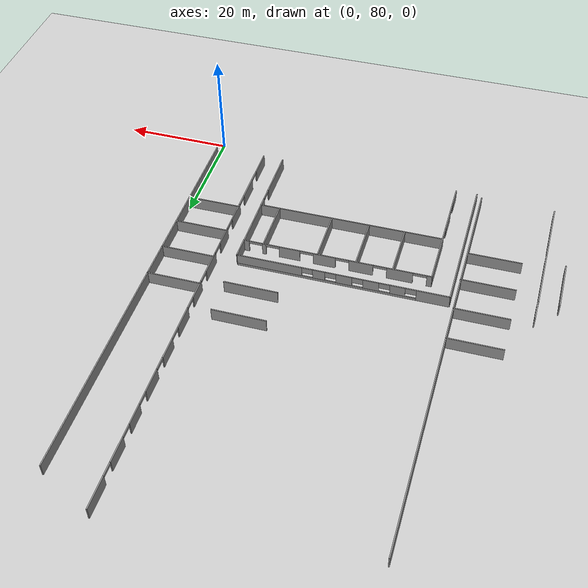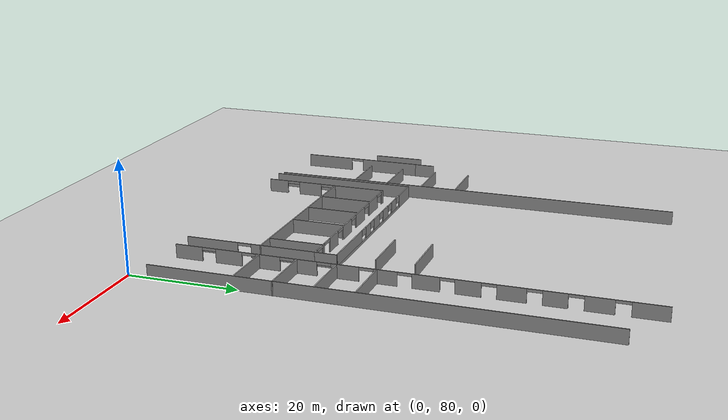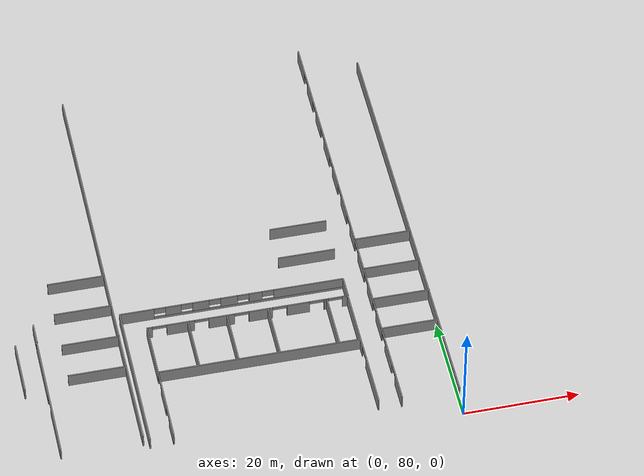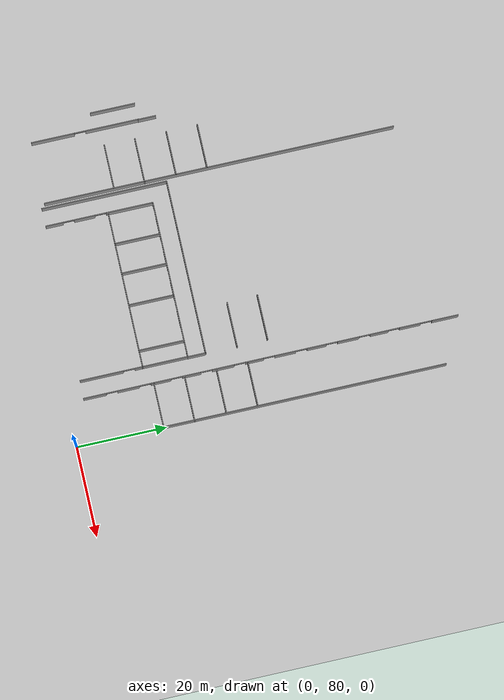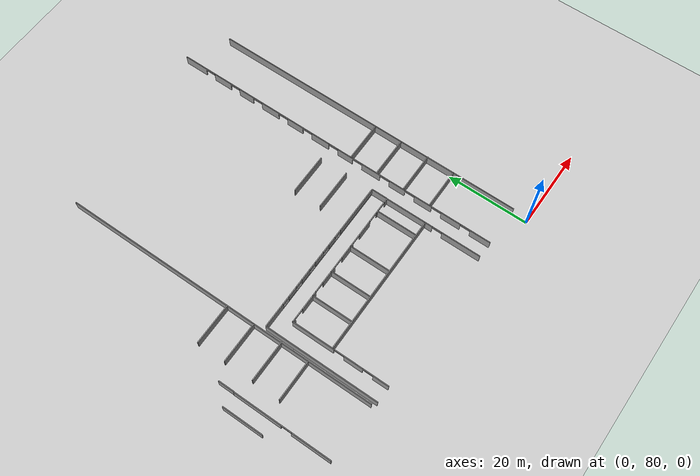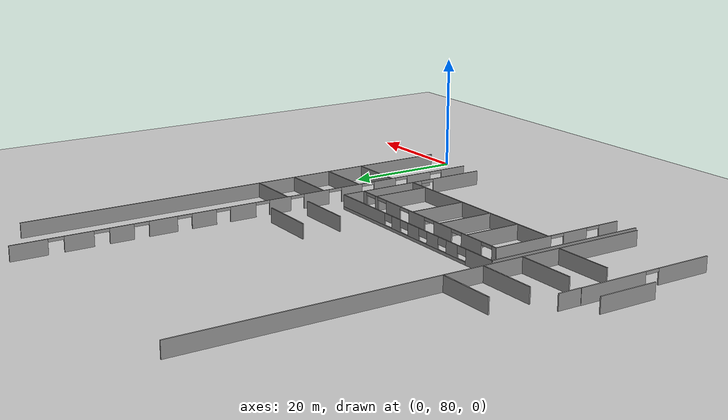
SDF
<sdf version="1.6">
 <world name="default">
  <model name="ground_plane">
   <static>1</static>
   <link name="link">
    <collision name="collision">
     <geometry><plane><normal>0 0 1</normal><size>100 100</size></plane></geometry>
     <surface><friction><ode><mu>100</mu><mu2>50</mu2></ode></friction></surface>
    </collision>
    <visual name="visual">
     <cast_shadows>0</cast_shadows>
     <geometry><plane><normal>0 0 1</normal><size>100 100</size></plane></geometry>
     <material>
      <script><uri>file://media/materials/scripts/gazebo.material</uri><name>Gazebo/Grey</name></script>
     </material>
    </visual>
   </link>
  </model>
  <model name="Jacaranda_v4_clone_0">
   <link name="Wall_100">
    <collision name="Wall_100_Collision">
     <geometry><box><size>10 0.2 2.5</size></box></geometry>
     <pose>0 0 1.25 0 -0 0</pose>
    </collision>
    <visual name="Wall_100_Visual">
     <pose>0 0 1.25 0 -0 0</pose>
     <geometry><box><size>10 0.2 2.5</size></box></geometry>
     <material>
      <script><uri>file://media/materials/scripts/gazebo.material</uri><name>Gazebo/Grey</name></script>
     </material>
    </visual>
    <velocity_decay><linear>0</linear><angular>0</angular></velocity_decay>
    <pose>-6.16092 -32.9106 0 0 0 -1.5708</pose>
   </link>
   <link name="Wall_102">
    <collision name="Wall_102_Collision">
     <geometry><box><size>10 0.2 2.5</size></box></geometry>
     <pose>0 0 1.25 0 -0 0</pose>
    </collision>
    <visual name="Wall_102_Visual">
     <pose>0 0 1.25 0 -0 0</pose>
     <geometry><box><size>10 0.2 2.5</size></box></geometry>
     <material>
      <script><uri>file://media/materials/scripts/gazebo.material</uri><name>Gazebo/Grey</name></script>
     </material>
    </visual>
    <velocity_decay><linear>0</linear><angular>0</angular></velocity_decay>
    <pose>-16.4411 -32.898 0 0 0 -1.5708</pose>
   </link>
   <link name="Wall_104">
    <collision name="Wall_104_Collision">
     <geometry><box><size>10 0.2 2.5</size></box></geometry>
     <pose>0 0 1.25 0 -0 0</pose>
    </collision>
    <visual name="Wall_104_Visual">
     <pose>0 0 1.25 0 -0 0</pose>
     <geometry><box><size>10 0.2 2.5</size></box></geometry>
     <material>
      <script><uri>file://media/materials/scripts/gazebo.material</uri><name>Gazebo/Grey</name></script>
     </material>
    </visual>
    <velocity_decay><linear>0</linear><angular>0</angular></velocity_decay>
    <pose>-23.6073 -32.9162 0 0 0 -1.5708</pose>
   </link>
   <link name="Wall_106">
    <collision name="Wall_106_Collision">
     <geometry><box><size>10 0.2 2.5</size></box></geometry>
     <pose>0 0 1.25 0 -0 0</pose>
    </collision>
    <visual name="Wall_106_Visual">
     <pose>0 0 1.25 0 -0 0</pose>
     <geometry><box><size>10 0.2 2.5</size></box></geometry>
     <material>
      <script><uri>file://media/materials/scripts/gazebo.material</uri><name>Gazebo/Grey</name></script>
     </material>
    </visual>
    <velocity_decay><linear>0</linear><angular>0</angular></velocity_decay>
    <pose>-30.3649 -32.9482 0 0 0 -1.5708</pose>
   </link>
   <link name="Wall_108">
    <pose>-37.4695 -39.9617 0 0 0 -1.5708</pose>
    <visual name="Wall_108_Visual_0">
     <pose>-6.76156 0 1.25 0 -0 0</pose>
     <geometry><box><size>10.4769 0.2 2.5</size></box></geometry>
     <material>
      <script><uri>file://media/materials/scripts/gazebo.material</uri><name>Gazebo/Grey</name></script>
     </material>
    </visual>
    <collision name="Wall_108_Collision_0">
     <geometry><box><size>10.4769 0.2 2.5</size></box></geometry>
     <pose>-6.76156 0 1.25 0 -0 0</pose>
    </collision>
    <visual name="Wall_108_Visual_1">
     <pose>3.29825 0 1.25 0 -0 0</pose>
     <geometry><box><size>4.64276 0.2 2.5</size></box></geometry>
     <material>
      <script><uri>file://media/materials/scripts/gazebo.material</uri><name>Gazebo/Grey</name></script>
     </material>
    </visual>
    <collision name="Wall_108_Collision_1">
     <geometry><box><size>4.64276 0.2 2.5</size></box></geometry>
     <pose>3.29825 0 1.25 0 -0 0</pose>
    </collision>
    <visual name="Wall_108_Visual_2">
     <pose>10.0598 0 1.25 0 -0 0</pose>
     <geometry><box><size>3.88036 0.2 2.5</size></box></geometry>
     <material>
      <script><uri>file://media/materials/scripts/gazebo.material</uri><name>Gazebo/Grey</name></script>
     </material>
    </visual>
    <collision name="Wall_108_Collision_2">
     <geometry><box><size>3.88036 0.2 2.5</size></box></geometry>
     <pose>10.0598 0 1.25 0 -0 0</pose>
    </collision>
    <visual name="Wall_108_Visual_3">
     <pose>-0.273129 0 2.25 0 -0 0</pose>
     <geometry><box><size>2.5 0.2 0.5</size></box></geometry>
     <material>
      <script><uri>file://media/materials/scripts/gazebo.material</uri><name>Gazebo/Grey</name></script>
     </material>
    </visual>
    <collision name="Wall_108_Collision_3">
     <geometry><box><size>2.5 0.2 0.5</size></box></geometry>
     <pose>-0.273129 0 2.25 0 -0 0</pose>
    </collision>
    <visual name="Wall_108_Visual_4">
     <pose>6.86964 0 2.25 0 -0 0</pose>
     <geometry><box><size>2.5 0.2 0.5</size></box></geometry>
     <material>
      <script><uri>file://media/materials/scripts/gazebo.material</uri><name>Gazebo/Grey</name></script>
     </material>
    </visual>
    <collision name="Wall_108_Collision_4">
     <geometry><box><size>2.5 0.2 0.5</size></box></geometry>
     <pose>6.86964 0 2.25 0 -0 0</pose>
    </collision>
   </link>
   <link name="Wall_114">
    <collision name="Wall_114_Collision">
     <geometry><box><size>28 0.2 2.5</size></box></geometry>
     <pose>0 0 1.25 0 -0 0</pose>
    </collision>
    <visual name="Wall_114_Visual">
     <pose>0 0 1.25 0 -0 0</pose>
     <geometry><box><size>28 0.2 2.5</size></box></geometry>
     <material>
      <script><uri>file://media/materials/scripts/gazebo.material</uri><name>Gazebo/Grey</name></script>
     </material>
    </visual>
    <velocity_decay><linear>0</linear><angular>0</angular></velocity_decay>
    <pose>-41.4842 -37.994 0 0 0 -1.5708</pose>
   </link>
   <link name="Wall_35">
    <pose>1.50679 -10.3195 0 0 0 -1.5708</pose>
    <visual name="Wall_35_Visual_0">
     <pose>-38.7718 0 1.25 0 -0 0</pose>
     <geometry><box><size>5.89333 0.2 2.5</size></box></geometry>
     <material>
      <script><uri>file://media/materials/scripts/gazebo.material</uri><name>Gazebo/Grey</name></script>
     </material>
    </visual>
    <collision name="Wall_35_Collision_0">
     <geometry><box><size>5.89333 0.2 2.5</size></box></geometry>
     <pose>-38.7718 0 1.25 0 -0 0</pose>
    </collision>
    <visual name="Wall_35_Visual_1">
     <pose>-30.9611 0 1.25 0 -0 0</pose>
     <geometry><box><size>4.72808 0.2 2.5</size></box></geometry>
     <material>
      <script><uri>file://media/materials/scripts/gazebo.material</uri><name>Gazebo/Grey</name></script>
     </material>
    </visual>
    <collision name="Wall_35_Collision_1">
     <geometry><box><size>4.72808 0.2 2.5</size></box></geometry>
     <pose>-30.9611 0 1.25 0 -0 0</pose>
    </collision>
    <visual name="Wall_35_Visual_2">
     <pose>-24.0927 0 1.25 0 -0 0</pose>
     <geometry><box><size>4.00867 0.2 2.5</size></box></geometry>
     <material>
      <script><uri>file://media/materials/scripts/gazebo.material</uri><name>Gazebo/Grey</name></script>
     </material>
    </visual>
    <collision name="Wall_35_Collision_2">
     <geometry><box><size>4.00867 0.2 2.5</size></box></geometry>
     <pose>-24.0927 0 1.25 0 -0 0</pose>
    </collision>
    <visual name="Wall_35_Visual_3">
     <pose>-17.1876 0 1.25 0 -0 0</pose>
     <geometry><box><size>4.80162 0.2 2.5</size></box></geometry>
     <material>
      <script><uri>file://media/materials/scripts/gazebo.material</uri><name>Gazebo/Grey</name></script>
     </material>
    </visual>
    <collision name="Wall_35_Collision_3">
     <geometry><box><size>4.80162 0.2 2.5</size></box></geometry>
     <pose>-17.1876 0 1.25 0 -0 0</pose>
    </collision>
    <visual name="Wall_35_Visual_4">
     <pose>-10.1336 0 1.25 0 -0 0</pose>
     <geometry><box><size>4.3064 0.2 2.5</size></box></geometry>
     <material>
      <script><uri>file://media/materials/scripts/gazebo.material</uri><name>Gazebo/Grey</name></script>
     </material>
    </visual>
    <collision name="Wall_35_Collision_4">
     <geometry><box><size>4.3064 0.2 2.5</size></box></geometry>
     <pose>-10.1336 0 1.25 0 -0 0</pose>
    </collision>
    <visual name="Wall_35_Visual_5">
     <pose>-3.14147 0 1.25 0 -0 0</pose>
     <geometry><box><size>4.67776 0.2 2.5</size></box></geometry>
     <material>
      <script><uri>file://media/materials/scripts/gazebo.material</uri><name>Gazebo/Grey</name></script>
     </material>
    </visual>
    <collision name="Wall_35_Collision_5">
     <geometry><box><size>4.67776 0.2 2.5</size></box></geometry>
     <pose>-3.14147 0 1.25 0 -0 0</pose>
    </collision>
    <visual name="Wall_35_Visual_6">
     <pose>3.7295 0 1.25 0 -0 0</pose>
     <geometry><box><size>4.06418 0.2 2.5</size></box></geometry>
     <material>
      <script><uri>file://media/materials/scripts/gazebo.material</uri><name>Gazebo/Grey</name></script>
     </material>
    </visual>
    <collision name="Wall_35_Collision_6">
     <geometry><box><size>4.06418 0.2 2.5</size></box></geometry>
     <pose>3.7295 0 1.25 0 -0 0</pose>
    </collision>
    <visual name="Wall_35_Visual_7">
     <pose>10.6976 0 1.25 0 -0 0</pose>
     <geometry><box><size>4.872 0.2 2.5</size></box></geometry>
     <material>
      <script><uri>file://media/materials/scripts/gazebo.material</uri><name>Gazebo/Grey</name></script>
     </material>
    </visual>
    <collision name="Wall_35_Collision_7">
     <geometry><box><size>4.872 0.2 2.5</size></box></geometry>
     <pose>10.6976 0 1.25 0 -0 0</pose>
    </collision>
    <visual name="Wall_35_Visual_8">
     <pose>17.7003 0 1.25 0 -0 0</pose>
     <geometry><box><size>4.13333 0.2 2.5</size></box></geometry>
     <material>
      <script><uri>file://media/materials/scripts/gazebo.material</uri><name>Gazebo/Grey</name></script>
     </material>
    </visual>
    <collision name="Wall_35_Collision_8">
     <geometry><box><size>4.13333 0.2 2.5</size></box></geometry>
     <pose>17.7003 0 1.25 0 -0 0</pose>
    </collision>
    <visual name="Wall_35_Visual_9">
     <pose>24.507 0 1.25 0 -0 0</pose>
     <geometry><box><size>4.48015 0.2 2.5</size></box></geometry>
     <material>
      <script><uri>file://media/materials/scripts/gazebo.material</uri><name>Gazebo/Grey</name></script>
     </material>
    </visual>
    <collision name="Wall_35_Collision_9">
     <geometry><box><size>4.48015 0.2 2.5</size></box></geometry>
     <pose>24.507 0 1.25 0 -0 0</pose>
    </collision>
    <visual name="Wall_35_Visual_10">
     <pose>31.7056 0 1.25 0 -0 0</pose>
     <geometry><box><size>4.91715 0.2 2.5</size></box></geometry>
     <material>
      <script><uri>file://media/materials/scripts/gazebo.material</uri><name>Gazebo/Grey</name></script>
     </material>
    </visual>
    <collision name="Wall_35_Collision_10">
     <geometry><box><size>4.91715 0.2 2.5</size></box></geometry>
     <pose>31.7056 0 1.25 0 -0 0</pose>
    </collision>
    <visual name="Wall_35_Visual_11">
     <pose>39.1913 0 1.25 0 -0 0</pose>
     <geometry><box><size>5.05424 0.2 2.5</size></box></geometry>
     <material>
      <script><uri>file://media/materials/scripts/gazebo.material</uri><name>Gazebo/Grey</name></script>
     </material>
    </visual>
    <collision name="Wall_35_Collision_11">
     <geometry><box><size>5.05424 0.2 2.5</size></box></geometry>
     <pose>39.1913 0 1.25 0 -0 0</pose>
    </collision>
    <visual name="Wall_35_Visual_12">
     <pose>-34.5751 0 2.25 0 -0 0</pose>
     <geometry><box><size>2.5 0.2 0.5</size></box></geometry>
     <material>
      <script><uri>file://media/materials/scripts/gazebo.material</uri><name>Gazebo/Grey</name></script>
     </material>
    </visual>
    <collision name="Wall_35_Collision_12">
     <geometry><box><size>2.5 0.2 0.5</size></box></geometry>
     <pose>-34.5751 0 2.25 0 -0 0</pose>
    </collision>
    <visual name="Wall_35_Visual_13">
     <pose>-27.347 0 2.25 0 -0 0</pose>
     <geometry><box><size>2.5 0.2 0.5</size></box></geometry>
     <material>
      <script><uri>file://media/materials/scripts/gazebo.material</uri><name>Gazebo/Grey</name></script>
     </material>
    </visual>
    <collision name="Wall_35_Collision_13">
     <geometry><box><size>2.5 0.2 0.5</size></box></geometry>
     <pose>-27.347 0 2.25 0 -0 0</pose>
    </collision>
    <visual name="Wall_35_Visual_14">
     <pose>-20.8384 0 2.25 0 -0 0</pose>
     <geometry><box><size>2.5 0.2 0.5</size></box></geometry>
     <material>
      <script><uri>file://media/materials/scripts/gazebo.material</uri><name>Gazebo/Grey</name></script>
     </material>
    </visual>
    <collision name="Wall_35_Collision_14">
     <geometry><box><size>2.5 0.2 0.5</size></box></geometry>
     <pose>-20.8384 0 2.25 0 -0 0</pose>
    </collision>
    <visual name="Wall_35_Visual_15">
     <pose>-13.5368 0 2.25 0 -0 0</pose>
     <geometry><box><size>2.5 0.2 0.5</size></box></geometry>
     <material>
      <script><uri>file://media/materials/scripts/gazebo.material</uri><name>Gazebo/Grey</name></script>
     </material>
    </visual>
    <collision name="Wall_35_Collision_15">
     <geometry><box><size>2.5 0.2 0.5</size></box></geometry>
     <pose>-13.5368 0 2.25 0 -0 0</pose>
    </collision>
    <visual name="Wall_35_Visual_16">
     <pose>-6.73035 0 2.25 0 -0 0</pose>
     <geometry><box><size>2.5 0.2 0.5</size></box></geometry>
     <material>
      <script><uri>file://media/materials/scripts/gazebo.material</uri><name>Gazebo/Grey</name></script>
     </material>
    </visual>
    <collision name="Wall_35_Collision_16">
     <geometry><box><size>2.5 0.2 0.5</size></box></geometry>
     <pose>-6.73035 0 2.25 0 -0 0</pose>
    </collision>
    <visual name="Wall_35_Visual_17">
     <pose>0.447409 0 2.25 0 -0 0</pose>
     <geometry><box><size>2.5 0.2 0.5</size></box></geometry>
     <material>
      <script><uri>file://media/materials/scripts/gazebo.material</uri><name>Gazebo/Grey</name></script>
     </material>
    </visual>
    <collision name="Wall_35_Collision_17">
     <geometry><box><size>2.5 0.2 0.5</size></box></geometry>
     <pose>0.447409 0 2.25 0 -0 0</pose>
    </collision>
    <visual name="Wall_35_Visual_18">
     <pose>7.01159 0 2.25 0 -0 0</pose>
     <geometry><box><size>2.5 0.2 0.5</size></box></geometry>
     <material>
      <script><uri>file://media/materials/scripts/gazebo.material</uri><name>Gazebo/Grey</name></script>
     </material>
    </visual>
    <collision name="Wall_35_Collision_18">
     <geometry><box><size>2.5 0.2 0.5</size></box></geometry>
     <pose>7.01159 0 2.25 0 -0 0</pose>
    </collision>
    <visual name="Wall_35_Visual_19">
     <pose>14.3836 0 2.25 0 -0 0</pose>
     <geometry><box><size>2.5 0.2 0.5</size></box></geometry>
     <material>
      <script><uri>file://media/materials/scripts/gazebo.material</uri><name>Gazebo/Grey</name></script>
     </material>
    </visual>
    <collision name="Wall_35_Collision_19">
     <geometry><box><size>2.5 0.2 0.5</size></box></geometry>
     <pose>14.3836 0 2.25 0 -0 0</pose>
    </collision>
    <visual name="Wall_35_Visual_20">
     <pose>21.0169 0 2.25 0 -0 0</pose>
     <geometry><box><size>2.5 0.2 0.5</size></box></geometry>
     <material>
      <script><uri>file://media/materials/scripts/gazebo.material</uri><name>Gazebo/Grey</name></script>
     </material>
    </visual>
    <collision name="Wall_35_Collision_20">
     <geometry><box><size>2.5 0.2 0.5</size></box></geometry>
     <pose>21.0169 0 2.25 0 -0 0</pose>
    </collision>
    <visual name="Wall_35_Visual_21">
     <pose>27.9971 0 2.25 0 -0 0</pose>
     <geometry><box><size>2.5 0.2 0.5</size></box></geometry>
     <material>
      <script><uri>file://media/materials/scripts/gazebo.material</uri><name>Gazebo/Grey</name></script>
     </material>
    </visual>
    <collision name="Wall_35_Collision_21">
     <geometry><box><size>2.5 0.2 0.5</size></box></geometry>
     <pose>27.9971 0 2.25 0 -0 0</pose>
    </collision>
    <visual name="Wall_35_Visual_22">
     <pose>35.4142 0 2.25 0 -0 0</pose>
     <geometry><box><size>2.5 0.2 0.5</size></box></geometry>
     <material>
      <script><uri>file://media/materials/scripts/gazebo.material</uri><name>Gazebo/Grey</name></script>
     </material>
    </visual>
    <collision name="Wall_35_Collision_22">
     <geometry><box><size>2.5 0.2 0.5</size></box></geometry>
     <pose>35.4142 0 2.25 0 -0 0</pose>
    </collision>
   </link>
   <link name="Wall_37">
    <pose>-2.48729 -39.9261 0 0 0 -1.5708</pose>
    <visual name="Wall_37_Visual_0">
     <pose>-6.07032 0 1.25 0 -0 0</pose>
     <geometry><box><size>11.8594 0.2 2.5</size></box></geometry>
     <material>
      <script><uri>file://media/materials/scripts/gazebo.material</uri><name>Gazebo/Grey</name></script>
     </material>
    </visual>
    <collision name="Wall_37_Collision_0">
     <geometry><box><size>11.8594 0.2 2.5</size></box></geometry>
     <pose>-6.07032 0 1.25 0 -0 0</pose>
    </collision>
    <visual name="Wall_37_Visual_1">
     <pose>7.17968 0 1.25 0 -0 0</pose>
     <geometry><box><size>9.64064 0.2 2.5</size></box></geometry>
     <material>
      <script><uri>file://media/materials/scripts/gazebo.material</uri><name>Gazebo/Grey</name></script>
     </material>
    </visual>
    <collision name="Wall_37_Collision_1">
     <geometry><box><size>9.64064 0.2 2.5</size></box></geometry>
     <pose>7.17968 0 1.25 0 -0 0</pose>
    </collision>
    <visual name="Wall_37_Visual_2">
     <pose>1.10936 0 2.25 0 -0 0</pose>
     <geometry><box><size>2.5 0.2 0.5</size></box></geometry>
     <material>
      <script><uri>file://media/materials/scripts/gazebo.material</uri><name>Gazebo/Grey</name></script>
     </material>
    </visual>
    <collision name="Wall_37_Collision_2">
     <geometry><box><size>2.5 0.2 0.5</size></box></geometry>
     <pose>1.10936 0 2.25 0 -0 0</pose>
    </collision>
   </link>
   <link name="Wall_61">
    <collision name="Wall_61_Collision">
     <geometry><box><size>10 0.2 2.5</size></box></geometry>
     <pose>0 0 1.25 0 -0 0</pose>
    </collision>
    <visual name="Wall_61_Visual">
     <pose>0 0 1.25 0 -0 0</pose>
     <geometry><box><size>10 0.2 2.5</size></box></geometry>
     <material>
      <script><uri>file://media/materials/scripts/gazebo.material</uri><name>Gazebo/Grey</name></script>
     </material>
    </visual>
    <velocity_decay><linear>0</linear><angular>0</angular></velocity_decay>
    <pose>-7.44869 -10.2258 0 0 -0 0</pose>
   </link>
   <link name="Wall_63">
    <collision name="Wall_63_Collision">
     <geometry><box><size>10 0.2 2.5</size></box></geometry>
     <pose>0 0 1.25 0 -0 0</pose>
    </collision>
    <visual name="Wall_63_Visual">
     <pose>0 0 1.25 0 -0 0</pose>
     <geometry><box><size>10 0.2 2.5</size></box></geometry>
     <material>
      <script><uri>file://media/materials/scripts/gazebo.material</uri><name>Gazebo/Grey</name></script>
     </material>
    </visual>
    <velocity_decay><linear>0</linear><angular>0</angular></velocity_decay>
    <pose>-7.36232 -17.0326 0 0 -0 0</pose>
   </link>
   <link name="Wall_65">
    <pose>-21.9808 -24.0075 0 0 -0 0</pose>
    <visual name="Wall_65_Visual_0">
     <pose>-16.5353 0 1.25 0 -0 0</pose>
     <geometry><box><size>5.92942 0.2 2.5</size></box></geometry>
     <material>
      <script><uri>file://media/materials/scripts/gazebo.material</uri><name>Gazebo/Grey</name></script>
     </material>
    </visual>
    <collision name="Wall_65_Collision_0">
     <geometry><box><size>5.92942 0.2 2.5</size></box></geometry>
     <pose>-16.5353 0 1.25 0 -0 0</pose>
    </collision>
    <visual name="Wall_65_Visual_1">
     <pose>2.96471 0 0.25 0 -0 0</pose>
     <geometry><box><size>33.0706 0.2 0.5</size></box></geometry>
     <material>
      <script><uri>file://media/materials/scripts/gazebo.material</uri><name>Gazebo/Grey</name></script>
     </material>
    </visual>
    <collision name="Wall_65_Collision_1">
     <geometry><box><size>33.0706 0.2 0.5</size></box></geometry>
     <pose>2.96471 0 0.25 0 -0 0</pose>
    </collision>
    <visual name="Wall_65_Visual_2">
     <pose>-10.2002 0 1.5 0 -0 0</pose>
     <geometry><box><size>2.74072 0.2 2</size></box></geometry>
     <material>
      <script><uri>file://media/materials/scripts/gazebo.material</uri><name>Gazebo/Grey</name></script>
     </material>
    </visual>
    <collision name="Wall_65_Collision_2">
     <geometry><box><size>2.74072 0.2 2</size></box></geometry>
     <pose>-10.2002 0 1.5 0 -0 0</pose>
    </collision>
    <visual name="Wall_65_Visual_3">
     <pose>-5.38873 0 1.5 0 -0 0</pose>
     <geometry><box><size>2.88224 0.2 2</size></box></geometry>
     <material>
      <script><uri>file://media/materials/scripts/gazebo.material</uri><name>Gazebo/Grey</name></script>
     </material>
    </visual>
    <collision name="Wall_65_Collision_3">
     <geometry><box><size>2.88224 0.2 2</size></box></geometry>
     <pose>-5.38873 0 1.5 0 -0 0</pose>
    </collision>
    <visual name="Wall_65_Visual_4">
     <pose>-0.471118 0 1.5 0 -0 0</pose>
     <geometry><box><size>2.95299 0.2 2</size></box></geometry>
     <material>
      <script><uri>file://media/materials/scripts/gazebo.material</uri><name>Gazebo/Grey</name></script>
     </material>
    </visual>
    <collision name="Wall_65_Collision_4">
     <geometry><box><size>2.95299 0.2 2</size></box></geometry>
     <pose>-0.471118 0 1.5 0 -0 0</pose>
    </collision>
    <visual name="Wall_65_Visual_5">
     <pose>4.16347 0 1.5 0 -0 0</pose>
     <geometry><box><size>2.31618 0.2 2</size></box></geometry>
     <material>
      <script><uri>file://media/materials/scripts/gazebo.material</uri><name>Gazebo/Grey</name></script>
     </material>
    </visual>
    <collision name="Wall_65_Collision_5">
     <geometry><box><size>2.31618 0.2 2</size></box></geometry>
     <pose>4.16347 0 1.5 0 -0 0</pose>
    </collision>
    <visual name="Wall_65_Visual_6">
     <pose>13.4108 0 1.5 0 -0 0</pose>
     <geometry><box><size>12.1784 0.2 2</size></box></geometry>
     <material>
      <script><uri>file://media/materials/scripts/gazebo.material</uri><name>Gazebo/Grey</name></script>
     </material>
    </visual>
    <collision name="Wall_65_Collision_6">
     <geometry><box><size>12.1784 0.2 2</size></box></geometry>
     <pose>13.4108 0 1.5 0 -0 0</pose>
    </collision>
    <visual name="Wall_65_Visual_7">
     <pose>-12.5706 0 1.9 0 -0 0</pose>
     <geometry><box><size>2 0.2 1.2</size></box></geometry>
     <material>
      <script><uri>file://media/materials/scripts/gazebo.material</uri><name>Gazebo/Grey</name></script>
     </material>
    </visual>
    <collision name="Wall_65_Collision_7">
     <geometry><box><size>2 0.2 1.2</size></box></geometry>
     <pose>-12.5706 0 1.9 0 -0 0</pose>
    </collision>
    <visual name="Wall_65_Visual_8">
     <pose>-7.82985 0 1.9 0 -0 0</pose>
     <geometry><box><size>2 0.2 1.2</size></box></geometry>
     <material>
      <script><uri>file://media/materials/scripts/gazebo.material</uri><name>Gazebo/Grey</name></script>
     </material>
    </visual>
    <collision name="Wall_65_Collision_8">
     <geometry><box><size>2 0.2 1.2</size></box></geometry>
     <pose>-7.82985 0 1.9 0 -0 0</pose>
    </collision>
    <visual name="Wall_65_Visual_9">
     <pose>-2.94761 0 1.9 0 -0 0</pose>
     <geometry><box><size>2 0.2 1.2</size></box></geometry>
     <material>
      <script><uri>file://media/materials/scripts/gazebo.material</uri><name>Gazebo/Grey</name></script>
     </material>
    </visual>
    <collision name="Wall_65_Collision_9">
     <geometry><box><size>2 0.2 1.2</size></box></geometry>
     <pose>-2.94761 0 1.9 0 -0 0</pose>
    </collision>
    <visual name="Wall_65_Visual_10">
     <pose>2.00538 0 1.9 0 -0 0</pose>
     <geometry><box><size>2 0.2 1.2</size></box></geometry>
     <material>
      <script><uri>file://media/materials/scripts/gazebo.material</uri><name>Gazebo/Grey</name></script>
     </material>
    </visual>
    <collision name="Wall_65_Collision_10">
     <geometry><box><size>2 0.2 1.2</size></box></geometry>
     <pose>2.00538 0 1.9 0 -0 0</pose>
    </collision>
    <visual name="Wall_65_Visual_11">
     <pose>6.32156 0 1.9 0 -0 0</pose>
     <geometry><box><size>2 0.2 1.2</size></box></geometry>
     <material>
      <script><uri>file://media/materials/scripts/gazebo.material</uri><name>Gazebo/Grey</name></script>
     </material>
    </visual>
    <collision name="Wall_65_Collision_11">
     <geometry><box><size>2 0.2 1.2</size></box></geometry>
     <pose>6.32156 0 1.9 0 -0 0</pose>
    </collision>
   </link>
   <link name="Wall_69">
    <collision name="Wall_69_Collision">
     <geometry><box><size>78.4462 0.2 2.5</size></box></geometry>
     <pose>0 0 1.25 0 -0 0</pose>
    </collision>
    <visual name="Wall_69_Visual">
     <pose>0 0 1.25 0 -0 0</pose>
     <geometry><box><size>78.4462 0.2 2.5</size></box></geometry>
     <material>
      <script><uri>file://media/materials/scripts/gazebo.material</uri><name>Gazebo/Grey</name></script>
     </material>
    </visual>
    <velocity_decay><linear>0</linear><angular>0</angular></velocity_decay>
    <pose>11.3874 -12.8156 0 0 0 -1.5708</pose>
   </link>
   <link name="Wall_81">
    <collision name="Wall_81_Collision">
     <geometry><box><size>10 0.2 2.5</size></box></geometry>
     <pose>0 0 1.25 0 -0 0</pose>
    </collision>
    <visual name="Wall_81_Visual">
     <pose>0 0 1.25 0 -0 0</pose>
     <geometry><box><size>10 0.2 2.5</size></box></geometry>
     <material>
      <script><uri>file://media/materials/scripts/gazebo.material</uri><name>Gazebo/Grey</name></script>
     </material>
    </visual>
    <velocity_decay><linear>0</linear><angular>0</angular></velocity_decay>
    <pose>6.4754 -15.532 0 0 -0 0</pose>
   </link>
   <link name="Wall_83">
    <collision name="Wall_83_Collision">
     <geometry><box><size>10 0.2 2.5</size></box></geometry>
     <pose>0 0 1.25 0 -0 0</pose>
    </collision>
    <visual name="Wall_83_Visual">
     <pose>0 0 1.25 0 -0 0</pose>
     <geometry><box><size>10 0.2 2.5</size></box></geometry>
     <material>
      <script><uri>file://media/materials/scripts/gazebo.material</uri><name>Gazebo/Grey</name></script>
     </material>
    </visual>
    <velocity_decay><linear>0</linear><angular>0</angular></velocity_decay>
    <pose>6.44384 -22.4952 0 0 -0 0</pose>
   </link>
   <link name="Wall_85">
    <collision name="Wall_85_Collision">
     <geometry><box><size>10 0.2 2.5</size></box></geometry>
     <pose>0 0 1.25 0 -0 0</pose>
    </collision>
    <visual name="Wall_85_Visual">
     <pose>0 0 1.25 0 -0 0</pose>
     <geometry><box><size>10 0.2 2.5</size></box></geometry>
     <material>
      <script><uri>file://media/materials/scripts/gazebo.material</uri><name>Gazebo/Grey</name></script>
     </material>
    </visual>
    <velocity_decay><linear>0</linear><angular>0</angular></velocity_decay>
    <pose>6.53559 -29.5696 0 0 -0 0</pose>
   </link>
   <link name="Wall_89">
    <pose>-20.0123 -27.9879 0 0 -0 3.14159</pose>
    <visual name="Wall_89_Visual_0">
     <pose>-17.0213 0 1.25 0 -0 0</pose>
     <geometry><box><size>0.957415 0.2 2.5</size></box></geometry>
     <material>
      <script><uri>file://media/materials/scripts/gazebo.material</uri><name>Gazebo/Grey</name></script>
     </material>
    </visual>
    <collision name="Wall_89_Collision_0">
     <geometry><box><size>0.957415 0.2 2.5</size></box></geometry>
     <pose>-17.0213 0 1.25 0 -0 0</pose>
    </collision>
    <visual name="Wall_89_Visual_1">
     <pose>-13.6838 0 1.25 0 -0 0</pose>
     <geometry><box><size>0.717618 0.2 2.5</size></box></geometry>
     <material>
      <script><uri>file://media/materials/scripts/gazebo.material</uri><name>Gazebo/Grey</name></script>
     </material>
    </visual>
    <collision name="Wall_89_Collision_1">
     <geometry><box><size>0.717618 0.2 2.5</size></box></geometry>
     <pose>-13.6838 0 1.25 0 -0 0</pose>
    </collision>
    <visual name="Wall_89_Visual_2">
     <pose>-8.84673 0 1.25 0 -0 0</pose>
     <geometry><box><size>3.95648 0.2 2.5</size></box></geometry>
     <material>
      <script><uri>file://media/materials/scripts/gazebo.material</uri><name>Gazebo/Grey</name></script>
     </material>
    </visual>
    <collision name="Wall_89_Collision_2">
     <geometry><box><size>3.95648 0.2 2.5</size></box></geometry>
     <pose>-8.84673 0 1.25 0 -0 0</pose>
    </collision>
    <visual name="Wall_89_Visual_3">
     <pose>-2.29074 0 1.25 0 -0 0</pose>
     <geometry><box><size>4.15549 0.2 2.5</size></box></geometry>
     <material>
      <script><uri>file://media/materials/scripts/gazebo.material</uri><name>Gazebo/Grey</name></script>
     </material>
    </visual>
    <collision name="Wall_89_Collision_3">
     <geometry><box><size>4.15549 0.2 2.5</size></box></geometry>
     <pose>-2.29074 0 1.25 0 -0 0</pose>
    </collision>
    <visual name="Wall_89_Visual_4">
     <pose>4.53043 0 1.25 0 -0 0</pose>
     <geometry><box><size>4.48686 0.2 2.5</size></box></geometry>
     <material>
      <script><uri>file://media/materials/scripts/gazebo.material</uri><name>Gazebo/Grey</name></script>
     </material>
    </visual>
    <collision name="Wall_89_Collision_4">
     <geometry><box><size>4.48686 0.2 2.5</size></box></geometry>
     <pose>4.53043 0 1.25 0 -0 0</pose>
    </collision>
    <visual name="Wall_89_Visual_5">
     <pose>11.6732 0 1.25 0 -0 0</pose>
     <geometry><box><size>4.79864 0.2 2.5</size></box></geometry>
     <material>
      <script><uri>file://media/materials/scripts/gazebo.material</uri><name>Gazebo/Grey</name></script>
     </material>
    </visual>
    <collision name="Wall_89_Collision_5">
     <geometry><box><size>4.79864 0.2 2.5</size></box></geometry>
     <pose>11.6732 0 1.25 0 -0 0</pose>
    </collision>
    <visual name="Wall_89_Visual_6">
     <pose>17.0363 0 1.25 0 -0 0</pose>
     <geometry><box><size>0.927498 0.2 2.5</size></box></geometry>
     <material>
      <script><uri>file://media/materials/scripts/gazebo.material</uri><name>Gazebo/Grey</name></script>
     </material>
    </visual>
    <collision name="Wall_89_Collision_6">
     <geometry><box><size>0.927498 0.2 2.5</size></box></geometry>
     <pose>17.0363 0 1.25 0 -0 0</pose>
    </collision>
    <visual name="Wall_89_Visual_7">
     <pose>-15.2926 0 2.25 0 -0 0</pose>
     <geometry><box><size>2.5 0.2 0.5</size></box></geometry>
     <material>
      <script><uri>file://media/materials/scripts/gazebo.material</uri><name>Gazebo/Grey</name></script>
     </material>
    </visual>
    <collision name="Wall_89_Collision_7">
     <geometry><box><size>2.5 0.2 0.5</size></box></geometry>
     <pose>-15.2926 0 2.25 0 -0 0</pose>
    </collision>
    <visual name="Wall_89_Visual_8">
     <pose>-12.075 0 2.25 0 -0 0</pose>
     <geometry><box><size>2.5 0.2 0.5</size></box></geometry>
     <material>
      <script><uri>file://media/materials/scripts/gazebo.material</uri><name>Gazebo/Grey</name></script>
     </material>
    </visual>
    <collision name="Wall_89_Collision_8">
     <geometry><box><size>2.5 0.2 0.5</size></box></geometry>
     <pose>-12.075 0 2.25 0 -0 0</pose>
    </collision>
    <visual name="Wall_89_Visual_9">
     <pose>-5.61848 0 2.25 0 -0 0</pose>
     <geometry><box><size>2.5 0.2 0.5</size></box></geometry>
     <material>
      <script><uri>file://media/materials/scripts/gazebo.material</uri><name>Gazebo/Grey</name></script>
     </material>
    </visual>
    <collision name="Wall_89_Collision_9">
     <geometry><box><size>2.5 0.2 0.5</size></box></geometry>
     <pose>-5.61848 0 2.25 0 -0 0</pose>
    </collision>
    <visual name="Wall_89_Visual_10">
     <pose>1.037 0 2.25 0 -0 0</pose>
     <geometry><box><size>2.5 0.2 0.5</size></box></geometry>
     <material>
      <script><uri>file://media/materials/scripts/gazebo.material</uri><name>Gazebo/Grey</name></script>
     </material>
    </visual>
    <collision name="Wall_89_Collision_10">
     <geometry><box><size>2.5 0.2 0.5</size></box></geometry>
     <pose>1.037 0 2.25 0 -0 0</pose>
    </collision>
    <visual name="Wall_89_Visual_11">
     <pose>8.02387 0 2.25 0 -0 0</pose>
     <geometry><box><size>2.5 0.2 0.5</size></box></geometry>
     <material>
      <script><uri>file://media/materials/scripts/gazebo.material</uri><name>Gazebo/Grey</name></script>
     </material>
    </visual>
    <collision name="Wall_89_Collision_11">
     <geometry><box><size>2.5 0.2 0.5</size></box></geometry>
     <pose>8.02387 0 2.25 0 -0 0</pose>
    </collision>
    <visual name="Wall_89_Visual_12">
     <pose>15.3225 0 2.25 0 -0 0</pose>
     <geometry><box><size>2.5 0.2 0.5</size></box></geometry>
     <material>
      <script><uri>file://media/materials/scripts/gazebo.material</uri><name>Gazebo/Grey</name></script>
     </material>
    </visual>
    <collision name="Wall_89_Collision_12">
     <geometry><box><size>2.5 0.2 0.5</size></box></geometry>
     <pose>15.3225 0 2.25 0 -0 0</pose>
    </collision>
   </link>
   <link name="Wall_91">
    <collision name="Wall_91_Collision">
     <geometry><box><size>4 0.2 2.5</size></box></geometry>
     <pose>0 0 1.25 0 -0 0</pose>
    </collision>
    <visual name="Wall_91_Visual">
     <pose>0 0 1.25 0 -0 0</pose>
     <geometry><box><size>4 0.2 2.5</size></box></geometry>
     <material>
      <script><uri>file://media/materials/scripts/gazebo.material</uri><name>Gazebo/Grey</name></script>
     </material>
    </visual>
    <velocity_decay><linear>0</linear><angular>0</angular></velocity_decay>
    <pose>-2.43322 -26.0003 0 0 0 -1.5708</pose>
   </link>
   <link name="Wall_93">
    <collision name="Wall_93_Collision">
     <geometry><box><size>10 0.2 2.5</size></box></geometry>
     <pose>0 0 1.25 0 -0 0</pose>
    </collision>
    <visual name="Wall_93_Visual">
     <pose>0 0 1.25 0 -0 0</pose>
     <geometry><box><size>10 0.2 2.5</size></box></geometry>
     <material>
      <script><uri>file://media/materials/scripts/gazebo.material</uri><name>Gazebo/Grey</name></script>
     </material>
    </visual>
    <velocity_decay><linear>0</linear><angular>0</angular></velocity_decay>
    <pose>6.44165 -36.4149 0 0 -0 0</pose>
   </link>
   <link name="Wall_96">
    <collision name="Wall_96_Collision">
     <geometry><box><size>35 0.2 2.5</size></box></geometry>
     <pose>0 0 1.25 0 -0 0</pose>
    </collision>
    <visual name="Wall_96_Visual">
     <pose>0 0 1.25 0 -0 0</pose>
     <geometry><box><size>35 0.2 2.5</size></box></geometry>
     <material>
      <script><uri>file://media/materials/scripts/gazebo.material</uri><name>Gazebo/Grey</name></script>
     </material>
    </visual>
    <velocity_decay><linear>0</linear><angular>0</angular></velocity_decay>
    <pose>-19.8824 -37.9939 0 0 -0 3.14159</pose>
   </link>
   <static>1</static>
   <pose>-11.2872 135.686 0 0 -0 0</pose>
  </model>
  <model name="Jacaranda_v4_clone_1">
   <link name="Wall_100">
    <collision name="Wall_100_Collision">
     <geometry><box><size>10 0.2 2.5</size></box></geometry>
     <pose>0 0 1.25 0 -0 0</pose>
    </collision>
    <visual name="Wall_100_Visual">
     <pose>0 0 1.25 0 -0 0</pose>
     <geometry><box><size>10 0.2 2.5</size></box></geometry>
     <material>
      <script><uri>file://media/materials/scripts/gazebo.material</uri><name>Gazebo/Grey</name></script>
     </material>
    </visual>
    <velocity_decay><linear>0</linear><angular>0</angular></velocity_decay>
    <pose>-6.16092 -32.9106 0 0 0 -1.5708</pose>
   </link>
   <link name="Wall_37">
    <pose>-2.48729 -39.9261 0 0 0 -1.5708</pose>
    <visual name="Wall_37_Visual_0">
     <pose>-6.07032 0 1.25 0 -0 0</pose>
     <geometry><box><size>11.8594 0.2 2.5</size></box></geometry>
     <material>
      <script><uri>file://media/materials/scripts/gazebo.material</uri><name>Gazebo/Grey</name></script>
     </material>
    </visual>
    <collision name="Wall_37_Collision_0">
     <geometry><box><size>11.8594 0.2 2.5</size></box></geometry>
     <pose>-6.07032 0 1.25 0 -0 0</pose>
    </collision>
    <visual name="Wall_37_Visual_1">
     <pose>7.17968 0 1.25 0 -0 0</pose>
     <geometry><box><size>9.64064 0.2 2.5</size></box></geometry>
     <material>
      <script><uri>file://media/materials/scripts/gazebo.material</uri><name>Gazebo/Grey</name></script>
     </material>
    </visual>
    <collision name="Wall_37_Collision_1">
     <geometry><box><size>9.64064 0.2 2.5</size></box></geometry>
     <pose>7.17968 0 1.25 0 -0 0</pose>
    </collision>
    <visual name="Wall_37_Visual_2">
     <pose>1.10936 0 2.25 0 -0 0</pose>
     <geometry><box><size>2.5 0.2 0.5</size></box></geometry>
     <material>
      <script><uri>file://media/materials/scripts/gazebo.material</uri><name>Gazebo/Grey</name></script>
     </material>
    </visual>
    <collision name="Wall_37_Collision_2">
     <geometry><box><size>2.5 0.2 0.5</size></box></geometry>
     <pose>1.10936 0 2.25 0 -0 0</pose>
    </collision>
   </link>
   <link name="Wall_69">
    <collision name="Wall_69_Collision">
     <geometry><box><size>78.4462 0.2 2.5</size></box></geometry>
     <pose>0 0 1.25 0 -0 0</pose>
    </collision>
    <visual name="Wall_69_Visual">
     <pose>0 0 1.25 0 -0 0</pose>
     <geometry><box><size>78.4462 0.2 2.5</size></box></geometry>
     <material>
      <script><uri>file://media/materials/scripts/gazebo.material</uri><name>Gazebo/Grey</name></script>
     </material>
    </visual>
    <velocity_decay><linear>0</linear><angular>0</angular></velocity_decay>
    <pose>11.3874 -12.8156 0 0 0 -1.5708</pose>
   </link>
   <link name="Wall_81">
    <collision name="Wall_81_Collision">
     <geometry><box><size>10 0.2 2.5</size></box></geometry>
     <pose>0 0 1.25 0 -0 0</pose>
    </collision>
    <visual name="Wall_81_Visual">
     <pose>0 0 1.25 0 -0 0</pose>
     <geometry><box><size>10 0.2 2.5</size></box></geometry>
     <material>
      <script><uri>file://media/materials/scripts/gazebo.material</uri><name>Gazebo/Grey</name></script>
     </material>
    </visual>
    <velocity_decay><linear>0</linear><angular>0</angular></velocity_decay>
    <pose>6.4754 -15.532 0 0 -0 0</pose>
   </link>
   <link name="Wall_83">
    <collision name="Wall_83_Collision">
     <geometry><box><size>10 0.2 2.5</size></box></geometry>
     <pose>0 0 1.25 0 -0 0</pose>
    </collision>
    <visual name="Wall_83_Visual">
     <pose>0 0 1.25 0 -0 0</pose>
     <geometry><box><size>10 0.2 2.5</size></box></geometry>
     <material>
      <script><uri>file://media/materials/scripts/gazebo.material</uri><name>Gazebo/Grey</name></script>
     </material>
    </visual>
    <velocity_decay><linear>0</linear><angular>0</angular></velocity_decay>
    <pose>6.44384 -22.4952 0 0 -0 0</pose>
   </link>
   <link name="Wall_85">
    <collision name="Wall_85_Collision">
     <geometry><box><size>10 0.2 2.5</size></box></geometry>
     <pose>0 0 1.25 0 -0 0</pose>
    </collision>
    <visual name="Wall_85_Visual">
     <pose>0 0 1.25 0 -0 0</pose>
     <geometry><box><size>10 0.2 2.5</size></box></geometry>
     <material>
      <script><uri>file://media/materials/scripts/gazebo.material</uri><name>Gazebo/Grey</name></script>
     </material>
    </visual>
    <velocity_decay><linear>0</linear><angular>0</angular></velocity_decay>
    <pose>6.53559 -29.5696 0 0 -0 0</pose>
   </link>
   <link name="Wall_91">
    <collision name="Wall_91_Collision">
     <geometry><box><size>4 0.2 2.5</size></box></geometry>
     <pose>0 0 1.25 0 -0 0</pose>
    </collision>
    <visual name="Wall_91_Visual">
     <pose>0 0 1.25 0 -0 0</pose>
     <geometry><box><size>4 0.2 2.5</size></box></geometry>
     <material>
      <script><uri>file://media/materials/scripts/gazebo.material</uri><name>Gazebo/Grey</name></script>
     </material>
    </visual>
    <velocity_decay><linear>0</linear><angular>0</angular></velocity_decay>
    <pose>-2.43322 -26.0003 0 0 0 -1.5708</pose>
   </link>
   <link name="Wall_93">
    <collision name="Wall_93_Collision">
     <geometry><box><size>10 0.2 2.5</size></box></geometry>
     <pose>0 0 1.25 0 -0 0</pose>
    </collision>
    <visual name="Wall_93_Visual">
     <pose>0 0 1.25 0 -0 0</pose>
     <geometry><box><size>10 0.2 2.5</size></box></geometry>
     <material>
      <script><uri>file://media/materials/scripts/gazebo.material</uri><name>Gazebo/Grey</name></script>
     </material>
    </visual>
    <velocity_decay><linear>0</linear><angular>0</angular></velocity_decay>
    <pose>6.44165 -36.4149 0 0 -0 0</pose>
   </link>
   <static>1</static>
   <pose>-65.1832 136.528 0 0 -0 0</pose>
  </model>
 </world>
</sdf>
